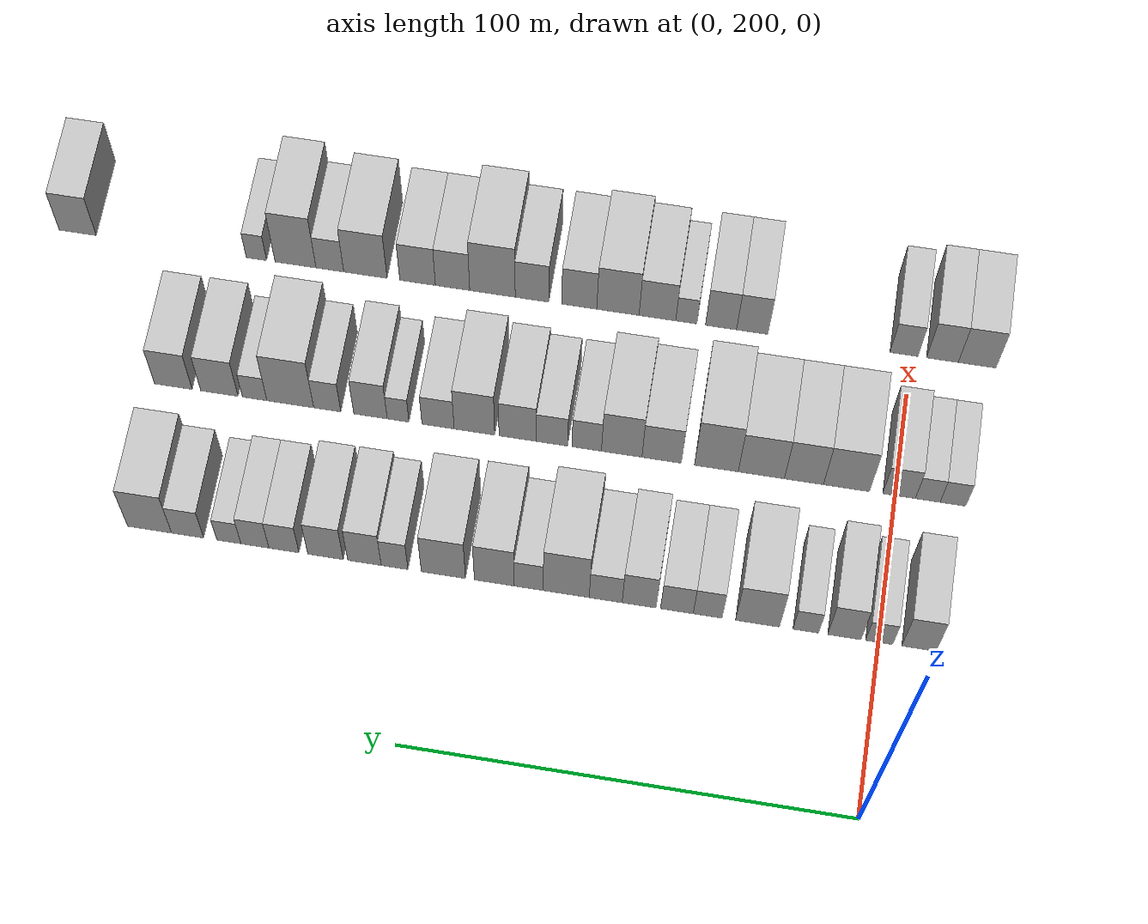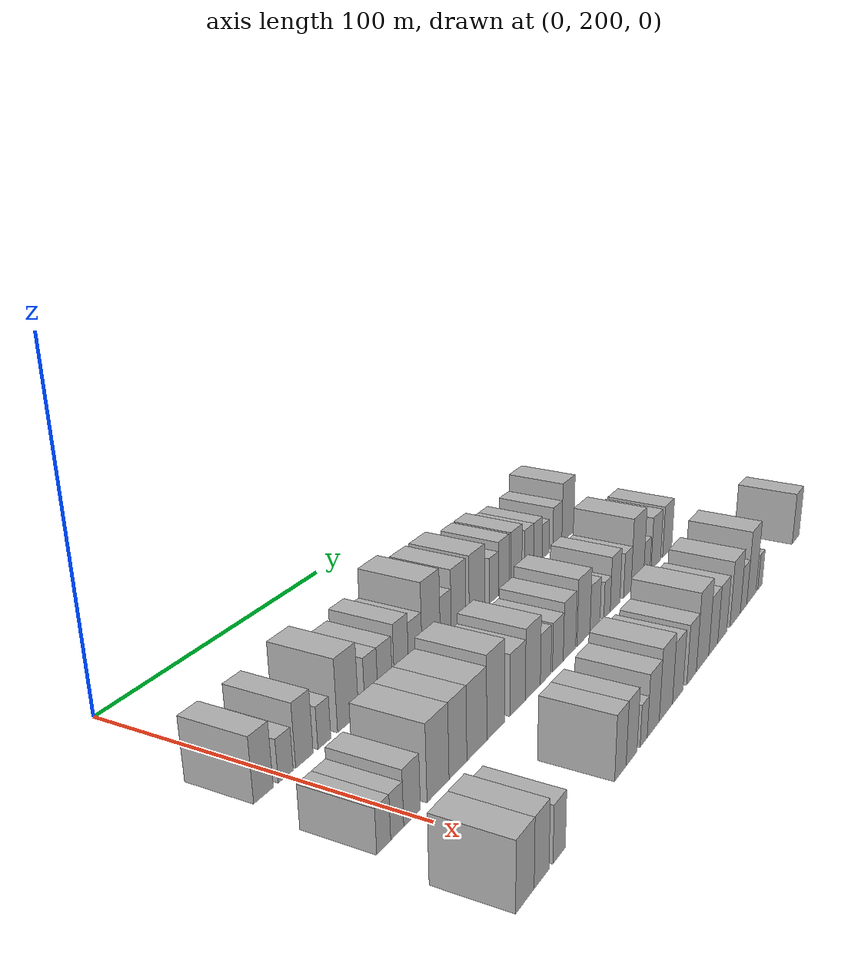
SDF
<sdf version="1.6">
 <world name="default">
  <model name="building_60">
   <static>1</static>
   <pose>50.0000 191.1660 0 0.000000 0.000000 0.000000</pose>
   <link name="link">
    <pose>0 0 9.00 0 0 0</pose>
    <collision name="collision"><geometry><box><size>20.0000 7.4796 18.0000</size></box></geometry></collision>
    <visual name="visual">
     <cast_shadows>0</cast_shadows>
     <geometry><box><size>20.0000 7.4796 18.0000</size></box></geometry>
     <material>
      <script>
       <uri>model://HANNAS_wall/materials/scripts</uri>
       <uri>model://HANNAS_wall/materials/textures</uri>
       <name>vrc/HANNAS_wall</name>
      </script>
     </material>
    </visual>
   </link>
  </model>
  <model name="building_61">
   <static>1</static>
   <pose>50.0000 199.8842 0 0.000000 0.000000 0.000000</pose>
   <link name="link">
    <pose>0 0 6.00 0 0 0</pose>
    <collision name="collision"><geometry><box><size>20.0000 5.9568 12.0000</size></box></geometry></collision>
    <visual name="visual">
     <cast_shadows>0</cast_shadows>
     <geometry><box><size>20.0000 5.9568 12.0000</size></box></geometry>
     <material>
      <script>
       <uri>model://HANNAS_wall/materials/scripts</uri>
       <uri>model://HANNAS_wall/materials/textures</uri>
       <name>vrc/HANNAS_wall</name>
      </script>
     </material>
    </visual>
   </link>
  </model>
  <model name="building_62">
   <static>1</static>
   <pose>50.0000 207.5187 0 0.000000 0.000000 0.000000</pose>
   <link name="link">
    <pose>0 0 9.00 0 0 0</pose>
    <collision name="collision"><geometry><box><size>20.0000 7.3122 18.0000</size></box></geometry></collision>
    <visual name="visual">
     <cast_shadows>0</cast_shadows>
     <geometry><box><size>20.0000 7.3122 18.0000</size></box></geometry>
     <material>
      <script>
       <uri>model://HANNAS_wall/materials/scripts</uri>
       <uri>model://HANNAS_wall/materials/textures</uri>
       <name>vrc/HANNAS_wall</name>
      </script>
     </material>
    </visual>
   </link>
  </model>
  <model name="building_63">
   <static>1</static>
   <pose>50.0000 216.0073 0 0.000000 0.000000 0.000000</pose>
   <link name="link">
    <pose>0 0 6.00 0 0 0</pose>
    <collision name="collision"><geometry><box><size>20.0000 5.6650 12.0000</size></box></geometry></collision>
    <visual name="visual">
     <cast_shadows>0</cast_shadows>
     <geometry><box><size>20.0000 5.6650 12.0000</size></box></geometry>
     <material>
      <script>
       <uri>model://HANNAS_wall/materials/scripts</uri>
       <uri>model://HANNAS_wall/materials/textures</uri>
       <name>vrc/HANNAS_wall</name>
      </script>
     </material>
    </visual>
   </link>
  </model>
  <model name="building_64">
   <static>1</static>
   <pose>50.0000 226.6825 0 0.000000 0.000000 0.000000</pose>
   <link name="link">
    <pose>0 0 10.50 0 0 0</pose>
    <collision name="collision"><geometry><box><size>20.0000 9.6854 21.0000</size></box></geometry></collision>
    <visual name="visual">
     <cast_shadows>0</cast_shadows>
     <geometry><box><size>20.0000 9.6854 21.0000</size></box></geometry>
     <material>
      <script>
       <uri>model://HANNAS_wall/materials/scripts</uri>
       <uri>model://HANNAS_wall/materials/textures</uri>
       <name>vrc/HANNAS_wall</name>
      </script>
     </material>
    </visual>
   </link>
  </model>
  <model name="building_65">
   <static>1</static>
   <pose>50.0000 237.7208 0 0.000000 0.000000 0.000000</pose>
   <link name="link">
    <pose>0 0 7.50 0 0 0</pose>
    <collision name="collision"><geometry><box><size>20.0000 6.3912 15.0000</size></box></geometry></collision>
    <visual name="visual">
     <cast_shadows>0</cast_shadows>
     <geometry><box><size>20.0000 6.3912 15.0000</size></box></geometry>
     <material>
      <script>
       <uri>model://HANNAS_wall/materials/scripts</uri>
       <uri>model://HANNAS_wall/materials/textures</uri>
       <name>vrc/HANNAS_wall</name>
      </script>
     </material>
    </visual>
   </link>
  </model>
  <model name="building_66">
   <static>1</static>
   <pose>50.0000 244.5417 0 0.000000 0.000000 0.000000</pose>
   <link name="link">
    <pose>0 0 7.50 0 0 0</pose>
    <collision name="collision"><geometry><box><size>20.0000 7.2505 15.0000</size></box></geometry></collision>
    <visual name="visual">
     <cast_shadows>0</cast_shadows>
     <geometry><box><size>20.0000 7.2505 15.0000</size></box></geometry>
     <material>
      <script>
       <uri>model://HANNAS_wall/materials/scripts</uri>
       <uri>model://HANNAS_wall/materials/textures</uri>
       <name>vrc/HANNAS_wall</name>
      </script>
     </material>
    </visual>
   </link>
  </model>
  <model name="building_67">
   <static>1</static>
   <pose>50.0000 252.9324 0 0.000000 0.000000 0.000000</pose>
   <link name="link">
    <pose>0 0 9.00 0 0 0</pose>
    <collision name="collision"><geometry><box><size>20.0000 7.5309 18.0000</size></box></geometry></collision>
    <visual name="visual">
     <cast_shadows>0</cast_shadows>
     <geometry><box><size>20.0000 7.5309 18.0000</size></box></geometry>
     <material>
      <script>
       <uri>model://HANNAS_wall/materials/scripts</uri>
       <uri>model://HANNAS_wall/materials/textures</uri>
       <name>vrc/HANNAS_wall</name>
      </script>
     </material>
    </visual>
   </link>
  </model>
  <model name="building_68">
   <static>1</static>
   <pose>50.0000 260.3608 0 0.000000 0.000000 0.000000</pose>
   <link name="link">
    <pose>0 0 7.50 0 0 0</pose>
    <collision name="collision"><geometry><box><size>20.0000 7.3258 15.0000</size></box></geometry></collision>
    <visual name="visual">
     <cast_shadows>0</cast_shadows>
     <geometry><box><size>20.0000 7.3258 15.0000</size></box></geometry>
     <material>
      <script>
       <uri>model://HANNAS_wall/materials/scripts</uri>
       <uri>model://HANNAS_wall/materials/textures</uri>
       <name>vrc/HANNAS_wall</name>
      </script>
     </material>
    </visual>
   </link>
  </model>
  <model name="building_69">
   <static>1</static>
   <pose>50.0000 269.1676 0 0.000000 0.000000 0.000000</pose>
   <link name="link">
    <pose>0 0 12.00 0 0 0</pose>
    <collision name="collision"><geometry><box><size>20.0000 10.2878 24.0000</size></box></geometry></collision>
    <visual name="visual">
     <cast_shadows>0</cast_shadows>
     <geometry><box><size>20.0000 10.2878 24.0000</size></box></geometry>
     <material>
      <script>
       <uri>model://HANNAS_wall/materials/scripts</uri>
       <uri>model://HANNAS_wall/materials/textures</uri>
       <name>vrc/HANNAS_wall</name>
      </script>
     </material>
    </visual>
   </link>
  </model>
  <model name="building_70">
   <static>1</static>
   <pose>50.0000 277.5280 0 0.000000 0.000000 0.000000</pose>
   <link name="link">
    <pose>0 0 7.50 0 0 0</pose>
    <collision name="collision"><geometry><box><size>20.0000 6.4331 15.0000</size></box></geometry></collision>
    <visual name="visual">
     <cast_shadows>0</cast_shadows>
     <geometry><box><size>20.0000 6.4331 15.0000</size></box></geometry>
     <material>
      <script>
       <uri>model://HANNAS_wall/materials/scripts</uri>
       <uri>model://HANNAS_wall/materials/textures</uri>
       <name>vrc/HANNAS_wall</name>
      </script>
     </material>
    </visual>
   </link>
  </model>
  <model name="building_71">
   <static>1</static>
   <pose>50.0000 285.2104 0 0.000000 0.000000 0.000000</pose>
   <link name="link">
    <pose>0 0 10.50 0 0 0</pose>
    <collision name="collision"><geometry><box><size>20.0000 8.9317 21.0000</size></box></geometry></collision>
    <visual name="visual">
     <cast_shadows>0</cast_shadows>
     <geometry><box><size>20.0000 8.9317 21.0000</size></box></geometry>
     <material>
      <script>
       <uri>model://HANNAS_wall/materials/scripts</uri>
       <uri>model://HANNAS_wall/materials/textures</uri>
       <name>vrc/HANNAS_wall</name>
      </script>
     </material>
    </visual>
   </link>
  </model>
  <model name="building_72">
   <static>1</static>
   <pose>50.0000 296.6290 0 0.000000 0.000000 0.000000</pose>
   <link name="link">
    <pose>0 0 10.50 0 0 0</pose>
    <collision name="collision"><geometry><box><size>20.0000 9.9055 21.0000</size></box></geometry></collision>
    <visual name="visual">
     <cast_shadows>0</cast_shadows>
     <geometry><box><size>20.0000 9.9055 21.0000</size></box></geometry>
     <material>
      <script>
       <uri>model://HANNAS_wall/materials/scripts</uri>
       <uri>model://HANNAS_wall/materials/textures</uri>
       <name>vrc/HANNAS_wall</name>
      </script>
     </material>
    </visual>
   </link>
  </model>
  <model name="building_73">
   <static>1</static>
   <pose>50.0000 307.5925 0 0.000000 0.000000 0.000000</pose>
   <link name="link">
    <pose>0 0 7.50 0 0 0</pose>
    <collision name="collision"><geometry><box><size>20.0000 6.0213 15.0000</size></box></geometry></collision>
    <visual name="visual">
     <cast_shadows>0</cast_shadows>
     <geometry><box><size>20.0000 6.0213 15.0000</size></box></geometry>
     <material>
      <script>
       <uri>model://HANNAS_wall/materials/scripts</uri>
       <uri>model://HANNAS_wall/materials/textures</uri>
       <name>vrc/HANNAS_wall</name>
      </script>
     </material>
    </visual>
   </link>
  </model>
  <model name="building_74">
   <static>1</static>
   <pose>50.0000 314.3707 0 0.000000 0.000000 0.000000</pose>
   <link name="link">
    <pose>0 0 9.00 0 0 0</pose>
    <collision name="collision"><geometry><box><size>20.0000 7.5350 18.0000</size></box></geometry></collision>
    <visual name="visual">
     <cast_shadows>0</cast_shadows>
     <geometry><box><size>20.0000 7.5350 18.0000</size></box></geometry>
     <material>
      <script>
       <uri>model://HANNAS_wall/materials/scripts</uri>
       <uri>model://HANNAS_wall/materials/textures</uri>
       <name>vrc/HANNAS_wall</name>
      </script>
     </material>
    </visual>
   </link>
  </model>
  <model name="building_75">
   <static>1</static>
   <pose>50.0000 323.1441 0 0.000000 0.000000 0.000000</pose>
   <link name="link">
    <pose>0 0 9.00 0 0 0</pose>
    <collision name="collision"><geometry><box><size>20.0000 8.0119 18.0000</size></box></geometry></collision>
    <visual name="visual">
     <cast_shadows>0</cast_shadows>
     <geometry><box><size>20.0000 8.0119 18.0000</size></box></geometry>
     <material>
      <script>
       <uri>model://HANNAS_wall/materials/scripts</uri>
       <uri>model://HANNAS_wall/materials/textures</uri>
       <name>vrc/HANNAS_wall</name>
      </script>
     </material>
    </visual>
   </link>
  </model>
  <model name="building_76">
   <static>1</static>
   <pose>50.0000 332.5528 0 0.000000 0.000000 0.000000</pose>
   <link name="link">
    <pose>0 0 7.50 0 0 0</pose>
    <collision name="collision"><geometry><box><size>20.0000 6.8054 15.0000</size></box></geometry></collision>
    <visual name="visual">
     <cast_shadows>0</cast_shadows>
     <geometry><box><size>20.0000 6.8054 15.0000</size></box></geometry>
     <material>
      <script>
       <uri>model://HANNAS_wall/materials/scripts</uri>
       <uri>model://HANNAS_wall/materials/textures</uri>
       <name>vrc/HANNAS_wall</name>
      </script>
     </material>
    </visual>
   </link>
  </model>
  <model name="building_77">
   <static>1</static>
   <pose>50.0000 339.1307 0 0.000000 0.000000 0.000000</pose>
   <link name="link">
    <pose>0 0 7.50 0 0 0</pose>
    <collision name="collision"><geometry><box><size>20.0000 6.3503 15.0000</size></box></geometry></collision>
    <visual name="visual">
     <cast_shadows>0</cast_shadows>
     <geometry><box><size>20.0000 6.3503 15.0000</size></box></geometry>
     <material>
      <script>
       <uri>model://HANNAS_wall/materials/scripts</uri>
       <uri>model://HANNAS_wall/materials/textures</uri>
       <name>vrc/HANNAS_wall</name>
      </script>
     </material>
    </visual>
   </link>
  </model>
  <model name="building_78">
   <static>1</static>
   <pose>50.0000 345.0320 0 0.000000 0.000000 0.000000</pose>
   <link name="link">
    <pose>0 0 6.00 0 0 0</pose>
    <collision name="collision"><geometry><box><size>20.0000 5.4523 12.0000</size></box></geometry></collision>
    <visual name="visual">
     <cast_shadows>0</cast_shadows>
     <geometry><box><size>20.0000 5.4523 12.0000</size></box></geometry>
     <material>
      <script>
       <uri>model://HANNAS_wall/materials/scripts</uri>
       <uri>model://HANNAS_wall/materials/textures</uri>
       <name>vrc/HANNAS_wall</name>
      </script>
     </material>
    </visual>
   </link>
  </model>
  <model name="building_79">
   <static>1</static>
   <pose>50.0000 354.4061 0 0.000000 0.000000 0.000000</pose>
   <link name="link">
    <pose>0 0 7.50 0 0 0</pose>
    <collision name="collision"><geometry><box><size>20.0000 7.2960 15.0000</size></box></geometry></collision>
    <visual name="visual">
     <cast_shadows>0</cast_shadows>
     <geometry><box><size>20.0000 7.2960 15.0000</size></box></geometry>
     <material>
      <script>
       <uri>model://HANNAS_wall/materials/scripts</uri>
       <uri>model://HANNAS_wall/materials/textures</uri>
       <name>vrc/HANNAS_wall</name>
      </script>
     </material>
    </visual>
   </link>
  </model>
  <model name="building_80">
   <static>1</static>
   <pose>50.0000 363.0557 0 0.000000 0.000000 0.000000</pose>
   <link name="link">
    <pose>0 0 10.50 0 0 0</pose>
    <collision name="collision"><geometry><box><size>20.0000 10.0031 21.0000</size></box></geometry></collision>
    <visual name="visual">
     <cast_shadows>0</cast_shadows>
     <geometry><box><size>20.0000 10.0031 21.0000</size></box></geometry>
     <material>
      <script>
       <uri>model://HANNAS_wall/materials/scripts</uri>
       <uri>model://HANNAS_wall/materials/textures</uri>
       <name>vrc/HANNAS_wall</name>
      </script>
     </material>
    </visual>
   </link>
  </model>
  <model name="building_138">
   <static>1</static>
   <pose>85.0000 187.1137 0 0.000000 0.000000 0.000000</pose>
   <link name="link">
    <pose>0 0 6.00 0 0 0</pose>
    <collision name="collision"><geometry><box><size>20.0000 5.7481 12.0000</size></box></geometry></collision>
    <visual name="visual">
     <cast_shadows>0</cast_shadows>
     <geometry><box><size>20.0000 5.7481 12.0000</size></box></geometry>
     <material>
      <script>
       <uri>model://HANNAS_wall/materials/scripts</uri>
       <uri>model://HANNAS_wall/materials/textures</uri>
       <name>vrc/HANNAS_wall</name>
      </script>
     </material>
    </visual>
   </link>
  </model>
  <model name="building_139">
   <static>1</static>
   <pose>85.0000 192.7548 0 0.000000 0.000000 0.000000</pose>
   <link name="link">
    <pose>0 0 6.00 0 0 0</pose>
    <collision name="collision"><geometry><box><size>20.0000 5.5341 12.0000</size></box></geometry></collision>
    <visual name="visual">
     <cast_shadows>0</cast_shadows>
     <geometry><box><size>20.0000 5.5341 12.0000</size></box></geometry>
     <material>
      <script>
       <uri>model://HANNAS_wall/materials/scripts</uri>
       <uri>model://HANNAS_wall/materials/textures</uri>
       <name>vrc/HANNAS_wall</name>
      </script>
     </material>
    </visual>
   </link>
  </model>
  <model name="building_140">
   <static>1</static>
   <pose>85.0000 199.1886 0 0.000000 0.000000 0.000000</pose>
   <link name="link">
    <pose>0 0 7.50 0 0 0</pose>
    <collision name="collision"><geometry><box><size>20.0000 7.3335 15.0000</size></box></geometry></collision>
    <visual name="visual">
     <cast_shadows>0</cast_shadows>
     <geometry><box><size>20.0000 7.3335 15.0000</size></box></geometry>
     <material>
      <script>
       <uri>model://HANNAS_wall/materials/scripts</uri>
       <uri>model://HANNAS_wall/materials/textures</uri>
       <name>vrc/HANNAS_wall</name>
      </script>
     </material>
    </visual>
   </link>
  </model>
  <model name="building_141">
   <static>1</static>
   <pose>85.0000 211.0456 0 0.000000 0.000000 0.000000</pose>
   <link name="link">
    <pose>0 0 10.50 0 0 0</pose>
    <collision name="collision"><geometry><box><size>20.0000 10.3805 21.0000</size></box></geometry></collision>
    <visual name="visual">
     <cast_shadows>0</cast_shadows>
     <geometry><box><size>20.0000 10.3805 21.0000</size></box></geometry>
     <material>
      <script>
       <uri>model://HANNAS_wall/materials/scripts</uri>
       <uri>model://HANNAS_wall/materials/textures</uri>
       <name>vrc/HANNAS_wall</name>
      </script>
     </material>
    </visual>
   </link>
  </model>
  <model name="building_142">
   <static>1</static>
   <pose>85.0000 220.6653 0 0.000000 0.000000 0.000000</pose>
   <link name="link">
    <pose>0 0 10.50 0 0 0</pose>
    <collision name="collision"><geometry><box><size>20.0000 8.8589 21.0000</size></box></geometry></collision>
    <visual name="visual">
     <cast_shadows>0</cast_shadows>
     <geometry><box><size>20.0000 8.8589 21.0000</size></box></geometry>
     <material>
      <script>
       <uri>model://HANNAS_wall/materials/scripts</uri>
       <uri>model://HANNAS_wall/materials/textures</uri>
       <name>vrc/HANNAS_wall</name>
      </script>
     </material>
    </visual>
   </link>
  </model>
  <model name="building_143">
   <static>1</static>
   <pose>85.0000 230.3106 0 0.000000 0.000000 0.000000</pose>
   <link name="link">
    <pose>0 0 10.50 0 0 0</pose>
    <collision name="collision"><geometry><box><size>20.0000 10.4317 21.0000</size></box></geometry></collision>
    <visual name="visual">
     <cast_shadows>0</cast_shadows>
     <geometry><box><size>20.0000 10.4317 21.0000</size></box></geometry>
     <material>
      <script>
       <uri>model://HANNAS_wall/materials/scripts</uri>
       <uri>model://HANNAS_wall/materials/textures</uri>
       <name>vrc/HANNAS_wall</name>
      </script>
     </material>
    </visual>
   </link>
  </model>
  <model name="building_144">
   <static>1</static>
   <pose>85.0000 240.4843 0 0.000000 0.000000 0.000000</pose>
   <link name="link">
    <pose>0 0 12.00 0 0 0</pose>
    <collision name="collision"><geometry><box><size>20.0000 9.9156 24.0000</size></box></geometry></collision>
    <visual name="visual">
     <cast_shadows>0</cast_shadows>
     <geometry><box><size>20.0000 9.9156 24.0000</size></box></geometry>
     <material>
      <script>
       <uri>model://HANNAS_wall/materials/scripts</uri>
       <uri>model://HANNAS_wall/materials/textures</uri>
       <name>vrc/HANNAS_wall</name>
      </script>
     </material>
    </visual>
   </link>
  </model>
  <model name="building_145">
   <static>1</static>
   <pose>85.0000 252.9195 0 0.000000 0.000000 0.000000</pose>
   <link name="link">
    <pose>0 0 9.00 0 0 0</pose>
    <collision name="collision"><geometry><box><size>20.0000 8.9548 18.0000</size></box></geometry></collision>
    <visual name="visual">
     <cast_shadows>0</cast_shadows>
     <geometry><box><size>20.0000 8.9548 18.0000</size></box></geometry>
     <material>
      <script>
       <uri>model://HANNAS_wall/materials/scripts</uri>
       <uri>model://HANNAS_wall/materials/textures</uri>
       <name>vrc/HANNAS_wall</name>
      </script>
     </material>
    </visual>
   </link>
  </model>
  <model name="building_146">
   <static>1</static>
   <pose>85.0000 262.0163 0 0.000000 0.000000 0.000000</pose>
   <link name="link">
    <pose>0 0 10.50 0 0 0</pose>
    <collision name="collision"><geometry><box><size>20.0000 9.2390 21.0000</size></box></geometry></collision>
    <visual name="visual">
     <cast_shadows>0</cast_shadows>
     <geometry><box><size>20.0000 9.2390 21.0000</size></box></geometry>
     <material>
      <script>
       <uri>model://HANNAS_wall/materials/scripts</uri>
       <uri>model://HANNAS_wall/materials/textures</uri>
       <name>vrc/HANNAS_wall</name>
      </script>
     </material>
    </visual>
   </link>
  </model>
  <model name="building_147">
   <static>1</static>
   <pose>85.0000 270.0098 0 0.000000 0.000000 0.000000</pose>
   <link name="link">
    <pose>0 0 7.50 0 0 0</pose>
    <collision name="collision"><geometry><box><size>20.0000 6.7480 15.0000</size></box></geometry></collision>
    <visual name="visual">
     <cast_shadows>0</cast_shadows>
     <geometry><box><size>20.0000 6.7480 15.0000</size></box></geometry>
     <material>
      <script>
       <uri>model://HANNAS_wall/materials/scripts</uri>
       <uri>model://HANNAS_wall/materials/textures</uri>
       <name>vrc/HANNAS_wall</name>
      </script>
     </material>
    </visual>
   </link>
  </model>
  <model name="building_148">
   <static>1</static>
   <pose>85.0000 277.9694 0 0.000000 0.000000 0.000000</pose>
   <link name="link">
    <pose>0 0 7.50 0 0 0</pose>
    <collision name="collision"><geometry><box><size>20.0000 7.1711 15.0000</size></box></geometry></collision>
    <visual name="visual">
     <cast_shadows>0</cast_shadows>
     <geometry><box><size>20.0000 7.1711 15.0000</size></box></geometry>
     <material>
      <script>
       <uri>model://HANNAS_wall/materials/scripts</uri>
       <uri>model://HANNAS_wall/materials/textures</uri>
       <name>vrc/HANNAS_wall</name>
      </script>
     </material>
    </visual>
   </link>
  </model>
  <model name="building_149">
   <static>1</static>
   <pose>85.0000 285.8047 0 0.000000 0.000000 0.000000</pose>
   <link name="link">
    <pose>0 0 9.00 0 0 0</pose>
    <collision name="collision"><geometry><box><size>20.0000 8.4995 18.0000</size></box></geometry></collision>
    <visual name="visual">
     <cast_shadows>0</cast_shadows>
     <geometry><box><size>20.0000 8.4995 18.0000</size></box></geometry>
     <material>
      <script>
       <uri>model://HANNAS_wall/materials/scripts</uri>
       <uri>model://HANNAS_wall/materials/textures</uri>
       <name>vrc/HANNAS_wall</name>
      </script>
     </material>
    </visual>
   </link>
  </model>
  <model name="building_150">
   <static>1</static>
   <pose>85.0000 295.7131 0 0.000000 0.000000 0.000000</pose>
   <link name="link">
    <pose>0 0 10.50 0 0 0</pose>
    <collision name="collision"><geometry><box><size>20.0000 9.3174 21.0000</size></box></geometry></collision>
    <visual name="visual">
     <cast_shadows>0</cast_shadows>
     <geometry><box><size>20.0000 9.3174 21.0000</size></box></geometry>
     <material>
      <script>
       <uri>model://HANNAS_wall/materials/scripts</uri>
       <uri>model://HANNAS_wall/materials/textures</uri>
       <name>vrc/HANNAS_wall</name>
      </script>
     </material>
    </visual>
   </link>
  </model>
  <model name="building_151">
   <static>1</static>
   <pose>85.0000 304.0751 0 0.000000 0.000000 0.000000</pose>
   <link name="link">
    <pose>0 0 7.50 0 0 0</pose>
    <collision name="collision"><geometry><box><size>20.0000 7.4066 15.0000</size></box></geometry></collision>
    <visual name="visual">
     <cast_shadows>0</cast_shadows>
     <geometry><box><size>20.0000 7.4066 15.0000</size></box></geometry>
     <material>
      <script>
       <uri>model://HANNAS_wall/materials/scripts</uri>
       <uri>model://HANNAS_wall/materials/textures</uri>
       <name>vrc/HANNAS_wall</name>
      </script>
     </material>
    </visual>
   </link>
  </model>
  <model name="building_152">
   <static>1</static>
   <pose>85.0000 313.2820 0 0.000000 0.000000 0.000000</pose>
   <link name="link">
    <pose>0 0 6.00 0 0 0</pose>
    <collision name="collision"><geometry><box><size>20.0000 5.0071 12.0000</size></box></geometry></collision>
    <visual name="visual">
     <cast_shadows>0</cast_shadows>
     <geometry><box><size>20.0000 5.0071 12.0000</size></box></geometry>
     <material>
      <script>
       <uri>model://HANNAS_wall/materials/scripts</uri>
       <uri>model://HANNAS_wall/materials/textures</uri>
       <name>vrc/HANNAS_wall</name>
      </script>
     </material>
    </visual>
   </link>
  </model>
  <model name="building_153">
   <static>1</static>
   <pose>85.0000 319.6381 0 0.000000 0.000000 0.000000</pose>
   <link name="link">
    <pose>0 0 9.00 0 0 0</pose>
    <collision name="collision"><geometry><box><size>20.0000 7.7052 18.0000</size></box></geometry></collision>
    <visual name="visual">
     <cast_shadows>0</cast_shadows>
     <geometry><box><size>20.0000 7.7052 18.0000</size></box></geometry>
     <material>
      <script>
       <uri>model://HANNAS_wall/materials/scripts</uri>
       <uri>model://HANNAS_wall/materials/textures</uri>
       <name>vrc/HANNAS_wall</name>
      </script>
     </material>
    </visual>
   </link>
  </model>
  <model name="building_154">
   <static>1</static>
   <pose>85.0000 329.6369 0 0.000000 0.000000 0.000000</pose>
   <link name="link">
    <pose>0 0 7.50 0 0 0</pose>
    <collision name="collision"><geometry><box><size>20.0000 6.2923 15.0000</size></box></geometry></collision>
    <visual name="visual">
     <cast_shadows>0</cast_shadows>
     <geometry><box><size>20.0000 6.2923 15.0000</size></box></geometry>
     <material>
      <script>
       <uri>model://HANNAS_wall/materials/scripts</uri>
       <uri>model://HANNAS_wall/materials/textures</uri>
       <name>vrc/HANNAS_wall</name>
      </script>
     </material>
    </visual>
   </link>
  </model>
  <model name="building_155">
   <static>1</static>
   <pose>85.0000 338.1976 0 0.000000 0.000000 0.000000</pose>
   <link name="link">
    <pose>0 0 12.00 0 0 0</pose>
    <collision name="collision"><geometry><box><size>20.0000 10.8290 24.0000</size></box></geometry></collision>
    <visual name="visual">
     <cast_shadows>0</cast_shadows>
     <geometry><box><size>20.0000 10.8290 24.0000</size></box></geometry>
     <material>
      <script>
       <uri>model://HANNAS_wall/materials/scripts</uri>
       <uri>model://HANNAS_wall/materials/textures</uri>
       <name>vrc/HANNAS_wall</name>
      </script>
     </material>
    </visual>
   </link>
  </model>
  <model name="building_156">
   <static>1</static>
   <pose>85.0000 346.4636 0 0.000000 0.000000 0.000000</pose>
   <link name="link">
    <pose>0 0 6.00 0 0 0</pose>
    <collision name="collision"><geometry><box><size>20.0000 5.7031 12.0000</size></box></geometry></collision>
    <visual name="visual">
     <cast_shadows>0</cast_shadows>
     <geometry><box><size>20.0000 5.7031 12.0000</size></box></geometry>
     <material>
      <script>
       <uri>model://HANNAS_wall/materials/scripts</uri>
       <uri>model://HANNAS_wall/materials/textures</uri>
       <name>vrc/HANNAS_wall</name>
      </script>
     </material>
    </visual>
   </link>
  </model>
  <model name="building_157">
   <static>1</static>
   <pose>85.0000 354.6605 0 0.000000 0.000000 0.000000</pose>
   <link name="link">
    <pose>0 0 9.00 0 0 0</pose>
    <collision name="collision"><geometry><box><size>20.0000 8.6908 18.0000</size></box></geometry></collision>
    <visual name="visual">
     <cast_shadows>0</cast_shadows>
     <geometry><box><size>20.0000 8.6908 18.0000</size></box></geometry>
     <material>
      <script>
       <uri>model://HANNAS_wall/materials/scripts</uri>
       <uri>model://HANNAS_wall/materials/textures</uri>
       <name>vrc/HANNAS_wall</name>
      </script>
     </material>
    </visual>
   </link>
  </model>
  <model name="building_158">
   <static>1</static>
   <pose>85.0000 365.3956 0 0.000000 0.000000 0.000000</pose>
   <link name="link">
    <pose>0 0 9.00 0 0 0</pose>
    <collision name="collision"><geometry><box><size>20.0000 8.7793 18.0000</size></box></geometry></collision>
    <visual name="visual">
     <cast_shadows>0</cast_shadows>
     <geometry><box><size>20.0000 8.7793 18.0000</size></box></geometry>
     <material>
      <script>
       <uri>model://HANNAS_wall/materials/scripts</uri>
       <uri>model://HANNAS_wall/materials/textures</uri>
       <name>vrc/HANNAS_wall</name>
      </script>
     </material>
    </visual>
   </link>
  </model>
  <model name="building_224">
   <static>1</static>
   <pose>120.0000 184.9621 0 0.000000 0.000000 0.000000</pose>
   <link name="link">
    <pose>0 0 9.00 0 0 0</pose>
    <collision name="collision"><geometry><box><size>20.0000 8.6277 18.0000</size></box></geometry></collision>
    <visual name="visual">
     <cast_shadows>0</cast_shadows>
     <geometry><box><size>20.0000 8.6277 18.0000</size></box></geometry>
     <material>
      <script>
       <uri>model://HANNAS_wall/materials/scripts</uri>
       <uri>model://HANNAS_wall/materials/textures</uri>
       <name>vrc/HANNAS_wall</name>
      </script>
     </material>
    </visual>
   </link>
  </model>
  <model name="building_225">
   <static>1</static>
   <pose>120.0000 192.9223 0 0.000000 0.000000 0.000000</pose>
   <link name="link">
    <pose>0 0 9.00 0 0 0</pose>
    <collision name="collision"><geometry><box><size>20.0000 7.2927 18.0000</size></box></geometry></collision>
    <visual name="visual">
     <cast_shadows>0</cast_shadows>
     <geometry><box><size>20.0000 7.2927 18.0000</size></box></geometry>
     <material>
      <script>
       <uri>model://HANNAS_wall/materials/scripts</uri>
       <uri>model://HANNAS_wall/materials/textures</uri>
       <name>vrc/HANNAS_wall</name>
      </script>
     </material>
    </visual>
   </link>
  </model>
  <model name="building_226">
   <static>1</static>
   <pose>120.0000 201.7733 0 0.000000 0.000000 0.000000</pose>
   <link name="link">
    <pose>0 0 7.50 0 0 0</pose>
    <collision name="collision"><geometry><box><size>20.0000 6.4093 15.0000</size></box></geometry></collision>
    <visual name="visual">
     <cast_shadows>0</cast_shadows>
     <geometry><box><size>20.0000 6.4093 15.0000</size></box></geometry>
     <material>
      <script>
       <uri>model://HANNAS_wall/materials/scripts</uri>
       <uri>model://HANNAS_wall/materials/textures</uri>
       <name>vrc/HANNAS_wall</name>
      </script>
     </material>
    </visual>
   </link>
  </model>
  <model name="building_227">
   <static>1</static>
   <pose>120.0000 236.8659 0 0.000000 0.000000 0.000000</pose>
   <link name="link">
    <pose>0 0 9.00 0 0 0</pose>
    <collision name="collision"><geometry><box><size>20.0000 7.2587 18.0000</size></box></geometry></collision>
    <visual name="visual">
     <cast_shadows>0</cast_shadows>
     <geometry><box><size>20.0000 7.2587 18.0000</size></box></geometry>
     <material>
      <script>
       <uri>model://HANNAS_wall/materials/scripts</uri>
       <uri>model://HANNAS_wall/materials/textures</uri>
       <name>vrc/HANNAS_wall</name>
      </script>
     </material>
    </visual>
   </link>
  </model>
  <model name="building_228">
   <static>1</static>
   <pose>120.0000 244.1012 0 0.000000 0.000000 0.000000</pose>
   <link name="link">
    <pose>0 0 9.00 0 0 0</pose>
    <collision name="collision"><geometry><box><size>20.0000 7.2119 18.0000</size></box></geometry></collision>
    <visual name="visual">
     <cast_shadows>0</cast_shadows>
     <geometry><box><size>20.0000 7.2119 18.0000</size></box></geometry>
     <material>
      <script>
       <uri>model://HANNAS_wall/materials/scripts</uri>
       <uri>model://HANNAS_wall/materials/textures</uri>
       <name>vrc/HANNAS_wall</name>
      </script>
     </material>
    </visual>
   </link>
  </model>
  <model name="building_229">
   <static>1</static>
   <pose>120.0000 252.1745 0 0.000000 0.000000 0.000000</pose>
   <link name="link">
    <pose>0 0 6.00 0 0 0</pose>
    <collision name="collision"><geometry><box><size>20.0000 4.9348 12.0000</size></box></geometry></collision>
    <visual name="visual">
     <cast_shadows>0</cast_shadows>
     <geometry><box><size>20.0000 4.9348 12.0000</size></box></geometry>
     <material>
      <script>
       <uri>model://HANNAS_wall/materials/scripts</uri>
       <uri>model://HANNAS_wall/materials/textures</uri>
       <name>vrc/HANNAS_wall</name>
      </script>
     </material>
    </visual>
   </link>
  </model>
  <model name="building_230">
   <static>1</static>
   <pose>120.0000 258.9083 0 0.000000 0.000000 0.000000</pose>
   <link name="link">
    <pose>0 0 9.00 0 0 0</pose>
    <collision name="collision"><geometry><box><size>20.0000 8.5328 18.0000</size></box></geometry></collision>
    <visual name="visual">
     <cast_shadows>0</cast_shadows>
     <geometry><box><size>20.0000 8.5328 18.0000</size></box></geometry>
     <material>
      <script>
       <uri>model://HANNAS_wall/materials/scripts</uri>
       <uri>model://HANNAS_wall/materials/textures</uri>
       <name>vrc/HANNAS_wall</name>
      </script>
     </material>
    </visual>
   </link>
  </model>
  <model name="building_231">
   <static>1</static>
   <pose>120.0000 268.1211 0 0.000000 0.000000 0.000000</pose>
   <link name="link">
    <pose>0 0 10.50 0 0 0</pose>
    <collision name="collision"><geometry><box><size>20.0000 9.8929 21.0000</size></box></geometry></collision>
    <visual name="visual">
     <cast_shadows>0</cast_shadows>
     <geometry><box><size>20.0000 9.8929 21.0000</size></box></geometry>
     <material>
      <script>
       <uri>model://HANNAS_wall/materials/scripts</uri>
       <uri>model://HANNAS_wall/materials/textures</uri>
       <name>vrc/HANNAS_wall</name>
      </script>
     </material>
    </visual>
   </link>
  </model>
  <model name="building_232">
   <static>1</static>
   <pose>120.0000 277.1745 0 0.000000 0.000000 0.000000</pose>
   <link name="link">
    <pose>0 0 9.00 0 0 0</pose>
    <collision name="collision"><geometry><box><size>20.0000 8.2138 18.0000</size></box></geometry></collision>
    <visual name="visual">
     <cast_shadows>0</cast_shadows>
     <geometry><box><size>20.0000 8.2138 18.0000</size></box></geometry>
     <material>
      <script>
       <uri>model://HANNAS_wall/materials/scripts</uri>
       <uri>model://HANNAS_wall/materials/textures</uri>
       <name>vrc/HANNAS_wall</name>
      </script>
     </material>
    </visual>
   </link>
  </model>
  <model name="building_233">
   <static>1</static>
   <pose>120.0000 288.2209 0 0.000000 0.000000 0.000000</pose>
   <link name="link">
    <pose>0 0 9.00 0 0 0</pose>
    <collision name="collision"><geometry><box><size>20.0000 7.8791 18.0000</size></box></geometry></collision>
    <visual name="visual">
     <cast_shadows>0</cast_shadows>
     <geometry><box><size>20.0000 7.8791 18.0000</size></box></geometry>
     <material>
      <script>
       <uri>model://HANNAS_wall/materials/scripts</uri>
       <uri>model://HANNAS_wall/materials/textures</uri>
       <name>vrc/HANNAS_wall</name>
      </script>
     </material>
    </visual>
   </link>
  </model>
  <model name="building_234">
   <static>1</static>
   <pose>120.0000 297.5053 0 0.000000 0.000000 0.000000</pose>
   <link name="link">
    <pose>0 0 12.00 0 0 0</pose>
    <collision name="collision"><geometry><box><size>20.0000 10.6896 24.0000</size></box></geometry></collision>
    <visual name="visual">
     <cast_shadows>0</cast_shadows>
     <geometry><box><size>20.0000 10.6896 24.0000</size></box></geometry>
     <material>
      <script>
       <uri>model://HANNAS_wall/materials/scripts</uri>
       <uri>model://HANNAS_wall/materials/textures</uri>
       <name>vrc/HANNAS_wall</name>
      </script>
     </material>
    </visual>
   </link>
  </model>
  <model name="building_235">
   <static>1</static>
   <pose>120.0000 306.8954 0 0.000000 0.000000 0.000000</pose>
   <link name="link">
    <pose>0 0 9.00 0 0 0</pose>
    <collision name="collision"><geometry><box><size>20.0000 8.0906 18.0000</size></box></geometry></collision>
    <visual name="visual">
     <cast_shadows>0</cast_shadows>
     <geometry><box><size>20.0000 8.0906 18.0000</size></box></geometry>
     <material>
      <script>
       <uri>model://HANNAS_wall/materials/scripts</uri>
       <uri>model://HANNAS_wall/materials/textures</uri>
       <name>vrc/HANNAS_wall</name>
      </script>
     </material>
    </visual>
   </link>
  </model>
  <model name="building_236">
   <static>1</static>
   <pose>120.0000 315.1391 0 0.000000 0.000000 0.000000</pose>
   <link name="link">
    <pose>0 0 9.00 0 0 0</pose>
    <collision name="collision"><geometry><box><size>20.0000 8.3969 18.0000</size></box></geometry></collision>
    <visual name="visual">
     <cast_shadows>0</cast_shadows>
     <geometry><box><size>20.0000 8.3969 18.0000</size></box></geometry>
     <material>
      <script>
       <uri>model://HANNAS_wall/materials/scripts</uri>
       <uri>model://HANNAS_wall/materials/textures</uri>
       <name>vrc/HANNAS_wall</name>
      </script>
     </material>
    </visual>
   </link>
  </model>
  <model name="building_237">
   <static>1</static>
   <pose>120.0000 327.4635 0 0.000000 0.000000 0.000000</pose>
   <link name="link">
    <pose>0 0 10.50 0 0 0</pose>
    <collision name="collision"><geometry><box><size>20.0000 10.2517 21.0000</size></box></geometry></collision>
    <visual name="visual">
     <cast_shadows>0</cast_shadows>
     <geometry><box><size>20.0000 10.2517 21.0000</size></box></geometry>
     <material>
      <script>
       <uri>model://HANNAS_wall/materials/scripts</uri>
       <uri>model://HANNAS_wall/materials/textures</uri>
       <name>vrc/HANNAS_wall</name>
      </script>
     </material>
    </visual>
   </link>
  </model>
  <model name="building_238">
   <static>1</static>
   <pose>120.0000 335.8839 0 0.000000 0.000000 0.000000</pose>
   <link name="link">
    <pose>0 0 7.50 0 0 0</pose>
    <collision name="collision"><geometry><box><size>20.0000 6.5891 15.0000</size></box></geometry></collision>
    <visual name="visual">
     <cast_shadows>0</cast_shadows>
     <geometry><box><size>20.0000 6.5891 15.0000</size></box></geometry>
     <material>
      <script>
       <uri>model://HANNAS_wall/materials/scripts</uri>
       <uri>model://HANNAS_wall/materials/textures</uri>
       <name>vrc/HANNAS_wall</name>
      </script>
     </material>
    </visual>
   </link>
  </model>
  <model name="building_239">
   <static>1</static>
   <pose>120.0000 344.0375 0 0.000000 0.000000 0.000000</pose>
   <link name="link">
    <pose>0 0 12.00 0 0 0</pose>
    <collision name="collision"><geometry><box><size>20.0000 9.7181 24.0000</size></box></geometry></collision>
    <visual name="visual">
     <cast_shadows>0</cast_shadows>
     <geometry><box><size>20.0000 9.7181 24.0000</size></box></geometry>
     <material>
      <script>
       <uri>model://HANNAS_wall/materials/scripts</uri>
       <uri>model://HANNAS_wall/materials/textures</uri>
       <name>vrc/HANNAS_wall</name>
      </script>
     </material>
    </visual>
   </link>
  </model>
  <model name="building_240">
   <static>1</static>
   <pose>120.0000 353.3097 0 0.000000 0.000000 0.000000</pose>
   <link name="link">
    <pose>0 0 6.00 0 0 0</pose>
    <collision name="collision"><geometry><box><size>20.0000 4.8262 12.0000</size></box></geometry></collision>
    <visual name="visual">
     <cast_shadows>0</cast_shadows>
     <geometry><box><size>20.0000 4.8262 12.0000</size></box></geometry>
     <material>
      <script>
       <uri>model://HANNAS_wall/materials/scripts</uri>
       <uri>model://HANNAS_wall/materials/textures</uri>
       <name>vrc/HANNAS_wall</name>
      </script>
     </material>
    </visual>
   </link>
  </model>
  <model name="building_241">
   <static>1</static>
   <pose>120.0000 396.0149 0 0.000000 0.000000 0.000000</pose>
   <link name="link">
    <pose>0 0 9.00 0 0 0</pose>
    <collision name="collision"><geometry><box><size>20.0000 8.8614 18.0000</size></box></geometry></collision>
    <visual name="visual">
     <cast_shadows>0</cast_shadows>
     <geometry><box><size>20.0000 8.8614 18.0000</size></box></geometry>
     <material>
      <script>
       <uri>model://HANNAS_wall/materials/scripts</uri>
       <uri>model://HANNAS_wall/materials/textures</uri>
       <name>vrc/HANNAS_wall</name>
      </script>
     </material>
    </visual>
   </link>
  </model>
 </world>
</sdf>
